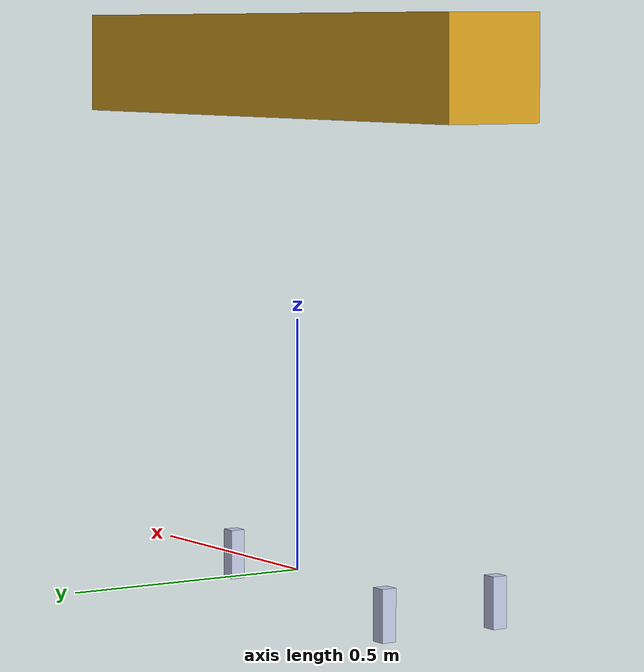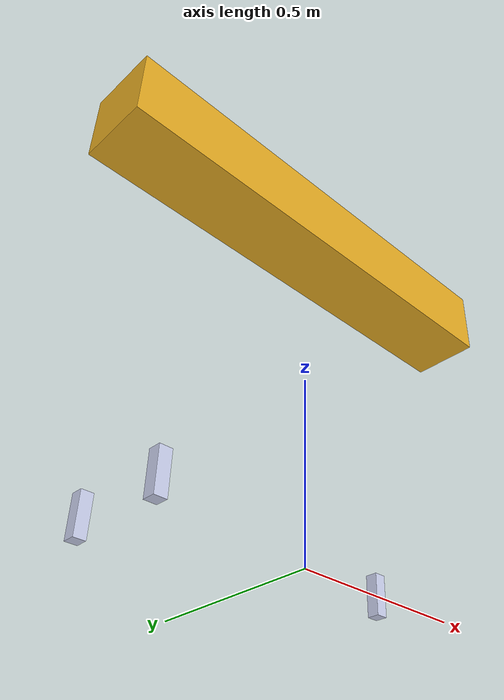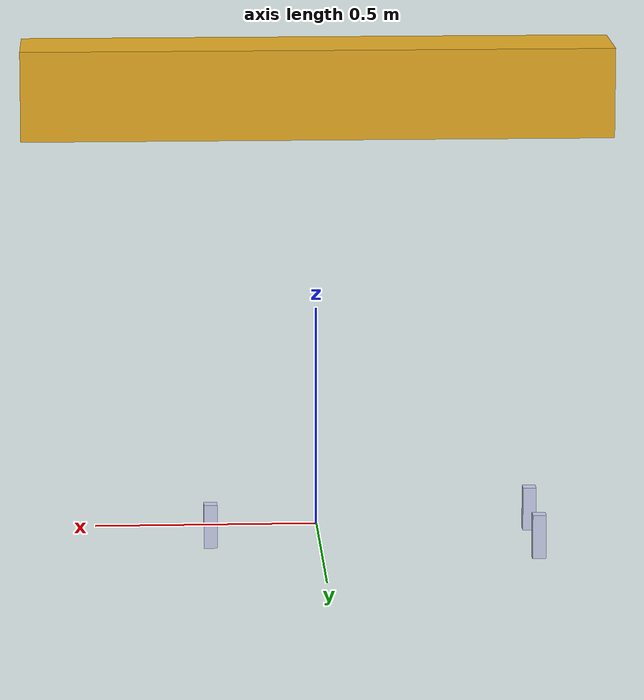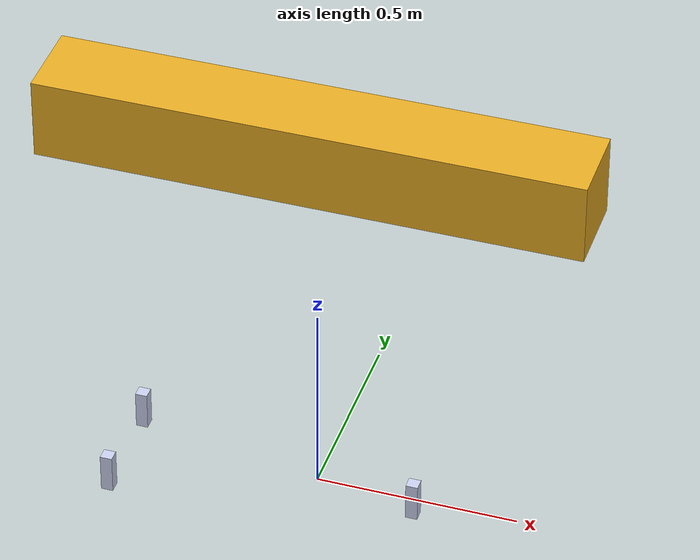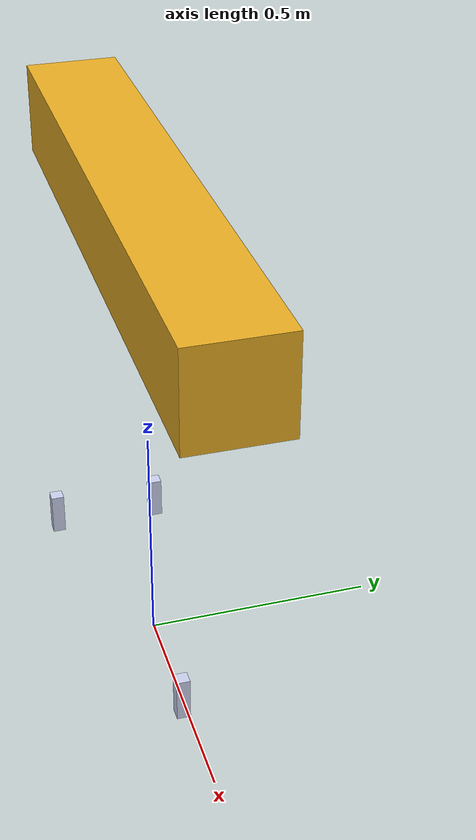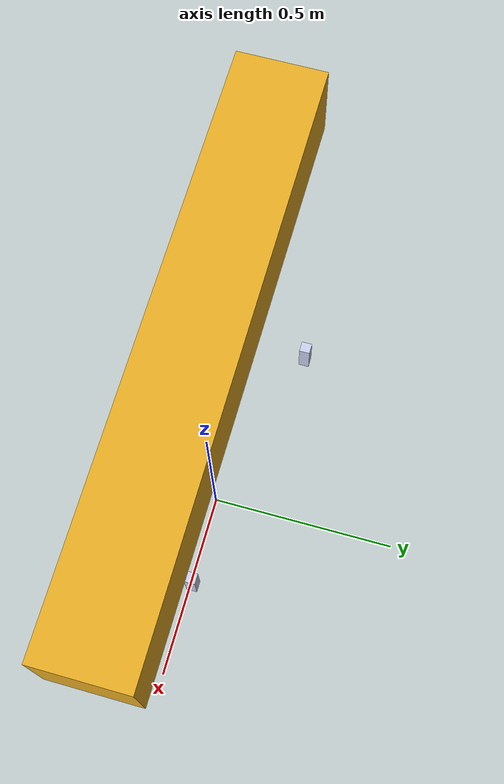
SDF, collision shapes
<?xml version="1.0"?>
<sdf version="1.9">
  <model name="aiapaec">
    <pose degrees="true">0 0 0 0 0 0</pose>

    <!-- base_link -->

    <link name="base_link">
      <inertial>
        <pose>0.0 0.0 0.0 0 0 0</pose>
        <mass>53.972</mass>
        <inertia>
          <ixx>1.1866349780349186</ixx>
          <ixy>0</ixy>
          <ixz>0</ixz>
          <iyy>8.449738344749418</iyy>
          <iyz>0</iyz>
          <izz>8.449738344749418</izz>
        </inertia>
      </inertial>
      <visual name="base_link_visual">
        <pose degrees="true">0 0 0 0 0 0</pose>
        <geometry>
          <mesh>
            <uri>model://aiapaec/meshes/base_link.stl</uri>
            <scale>1 1 1</scale>
          </mesh>
        </geometry>
        <material>
          <ambient>0.9098 0.67843 0.13725 1</ambient>
          <diffuse>0.9098 0.67843 0.13725 1</diffuse>
          <specular>0.1 0.1 0.1 1</specular>
          <emissive>0 0 0 0</emissive>
        </material>
      </visual>

      <collision name="base_link_collision">
        <pose>0.0 0.0 1 0 0 0</pose>
        <geometry>
          <box>
            <size>1.310 0.20 0.20</size>
          </box>
        </geometry>
      </collision>

      <sensor
            element_id="base_link" action="add"
            name="aiapaec_dvl"
            type="custom" gz:type="dvl">
          <!-- Account for DVL mounting position and base link rotation -->
          <pose degrees="true">0 0 0 0 0 0</pose>
          <always_on>1</always_on>
          <update_rate>30</update_rate>
          <topic>/aiapaec/gazebo/dvl</topic>
          <gz:dvl>
            <type>phased_array</type>
            <arrangement degrees="true">
              <beam id="1">
                <aperture>2.1</aperture>
                <rotation>45</rotation>
                <tilt>5</tilt>
              </beam>
              <beam>
                <aperture>2.1</aperture>
                <rotation>120</rotation>
                <tilt>5</tilt>
              </beam>
              <beam>
                <aperture>2.1</aperture>
                <rotation>-45</rotation>
                <tilt>5</tilt>
              </beam>
              <beam>
                <aperture>2.1</aperture>
                <rotation>-120</rotation>
                <tilt>5</tilt>
              </beam>
            </arrangement>
            <tracking>
              <bottom_mode>
                <when>best</when>
                <visualize>true</visualize>
              </bottom_mode>
            </tracking>
            <!-- Roughly 1 m resolution at a 100m -->
            <resolution>0.01</resolution>
            <!-- Approximate maximum range @ ~14.4v -->
            <maximum_range>100.</maximum_range>
            <minimum_range>0.1</minimum_range>
            <!-- ENU to SFM -->
            <reference_frame>0 0 0 0 0 0</reference_frame>
          </gz:dvl>
        </sensor>
        <!--
            See https://www.spartonnavex.com/product/ahrs-m2
        -->
        <sensor
            element_id="base_link"
            action="add"
            name="aiapaec_imu"
            type="imu">
        <!--IMU in a Sparton AHRS-M2 -->
          <always_on>1</always_on>
          <pose degrees="true">0 0 0 0 0 0</pose>
          <imu>
            <orientation_reference_frame>base_link</orientation_reference_frame>
            <enable_orientation>1</enable_orientation>
          </imu>
          <update_rate>30</update_rate>
          <topic>/aiapaec/gazebo/imu</topic>
        </sensor>

    </link>

    <plugin
        filename="gz-sim-odometry-publisher-system"
        name="gz::sim::systems::OdometryPublisher">
        <odom_frame>base_link</odom_frame>
        <odom_publish_frequency>400</odom_publish_frequency>
        <dimensions>3</dimensions>
        <rpy_offset>0 0 0</rpy_offset>
    </plugin>

    <plugin
      filename="gz-sim-buoyancy-engine-system"
      name="gz::sim::systems::BuoyancyEngine">
      <link_name>base_link</link_name>
      <namespace>aiapaec</namespace>
      <min_volume>0.04000</min_volume>
      <neutral_volume>0.05267</neutral_volume>
      <default_volume>0.05267</default_volume>
      <max_volume>0.0600</max_volume>
      <max_inflation_rate>0.00001</max_inflation_rate>
      <fluid_density>1030</fluid_density>
      <surface>0</surface>
    </plugin>

<!-- Hydrodynamics plugin -->
    <plugin
      filename="gz-sim-hydrodynamics-system"
      name="gz::sim::systems::Hydrodynamics">
      <link_name>base_link</link_name>
      <water_density>1030.0</water_density>
      <!-- Added mass: -->
        <xDotU>7.830329E-01</xDotU>  <!-- -7.830329E-01 (Referencial calculus) -->
        <yDotV>-5.062522E+01</yDotV>
        <zDotW>-5.062522E+01</zDotW>
        <kDotP>-3.913712E-01</kDotP>
        <mDotQ>-6.885066E+00</mDotQ>
        <nDotR>-6.885066E+00</nDotR>
        <!-- First order stability derivative: -->
        <xU>0.0</xU>
        <yV>0.0</yV>
        <zW>0.0</zW>
        <kP>0.0</kP>
        <mQ>0.0</mQ>
        <nR>0.0</nR>
        <!-- Second order stability derivative: -->
        <xUabsU>-1.479637E+00</xUabsU>
        <yVabsV>-1.258586E+02</yVabsV>
        <zWabsW>-1.258586E+02</zWabsW>
        <kPabsP>0.000000E+00</kPabsP>
        <mQabsQ>-6.347858E+00</mQabsQ>
        <nRabsR>-6.347858E+00</nRabsR>
    </plugin>

<!-- Motor_derecho (Thruster 1)-->

    <link name="thruster1">
      <pose>-0.49387 -0.12499 0.00010437 -1.5708 0 0</pose> <!---0.49387 -0.12499 0.00010437 -1.5708 0 0 Pose to inertias-->
      <visual name="thruster1_visual">
        <pose>0 0 0 0 0 0</pose> <!--Pose to meshes-->
        <geometry>
          <mesh>
            <uri>model://aiapaec/meshes/thruster1.stl</uri>
            <scale>1 1 1</scale>
          </mesh>
        </geometry>
        <material>
          <ambient>0.79216 0.81961 0.93333 1</ambient>
          <diffuse>0.79216 0.81961 0.93333 1</diffuse>
          <specular>0.1 0.1 0.1 1</specular>
          <emissive>0 0 0 0</emissive>
        </material>
      </visual>
       <inertial>
        <mass>0.0927</mass>
        <inertia>
          <ixx>0.0001</ixx>
          <ixy>0</ixy>
          <ixz>0</ixz>
          <iyy>0.0001</iyy>
          <iyz>0</iyz>
          <izz>0.0001</izz>
        </inertia>
      </inertial>
      <collision name="thruster1_collision">
        <geometry>
          <box>
            <size>0.03 0.1 0.03</size>
          </box>
        </geometry>
      </collision>
    </link>

<!-- Motor_izquierda (Thruster 2)-->

    <link name="thruster2">
      <pose>-0.49387 0.12499 -0.00010437 1.5708 0 0</pose>
      <visual name="thruster2_visual">
        <pose>0 0 0 0 0 0</pose>
        <geometry>
          <mesh>
            <uri>model://aiapaec/meshes/thruster2.stl</uri>
            <scale>1 1 1</scale>
          </mesh>
        </geometry>
        <material>
          <ambient>0.79216 0.81961 0.93333 1</ambient>
          <diffuse>0.79216 0.81961 0.93333 1</diffuse>
          <specular>0.1 0.1 0.1 1</specular>
          <emissive>0 0 0 0</emissive>
        </material>
      </visual>
      <inertial>
        <mass>0.0927</mass>
        <inertia>
          <ixx>0.0001</ixx>
          <ixy>0</ixy>
          <ixz>0</ixz>
          <iyy>0.0001</iyy>
          <iyz>0</iyz>
          <izz>0.0001</izz>
        </inertia>
      </inertial>
      <collision name="thruster2_collision">
        <geometry>
          <box>
            <size>0.03 0.1 0.03</size>
          </box>
        </geometry>
      </collision>
    </link>

<!-- Motor_medio_link (Thruster 3)-->

    <link name="thruster3">
      <pose>0.24 0.001871 0 1.5708 0 1.5708</pose>
      <visual name="thruster3_visual">
        <pose>0.0085526 4.0292E-08 -1.9993E-08 0 0 0</pose>
        <geometry>
          <mesh>
            <uri>model://aiapaec/meshes/thruster3.stl</uri>
            <scale>1 1 1</scale>
          </mesh>
        </geometry>
        <material>
          <ambient>0.79216 0.81961 0.93333 1</ambient>
          <diffuse>0.79216 0.81961 0.93333 1</diffuse>
          <specular>0.1 0.1 0.1 1</specular>
          <emissive>0 0 0 0</emissive>
        </material>
      </visual>
       <inertial>
        <mass>0.0927</mass>
        <inertia>
          <ixx>0.0001</ixx>
          <ixy>0</ixy>
          <ixz>0</ixz>
          <iyy>0.0001</iyy>
          <iyz>0</iyz>
          <izz>0.0001</izz>
        </inertia>
      </inertial>
      <collision name="thruster3_collision">
        <geometry>
          <box>
            <size>0.03 0.1 0.03</size>
          </box>
        </geometry>
      </collision>
    </link>

<!-- Joint base_link/thruster1-->

    <joint name="thruster1_joint" type="revolute">
      <pose>0 0 0 0 0 0</pose>
      <parent>base_link</parent>
      <child>thruster1</child>
      <axis>
        <xyz>1 0 0</xyz>
      </axis>
    </joint>

<!-- Joint base_link/thruster2-->

    <joint name="thruster2_joint" type="revolute">
      <pose>0 0 0 0 0 0</pose>
      <parent>base_link</parent>
      <child>thruster2</child>
      <axis>
        <xyz>1 0 0</xyz>
      </axis>
    </joint>

<!-- Joint base_link/thruster3-->

    <joint name="thruster3_joint" type="revolute">
      <pose>0 0 0 0 0 0</pose>
      <parent>base_link</parent>
      <child>thruster3</child>
      <axis>
        <xyz>1 0 0</xyz>
      </axis>
    </joint>

<!-- Plugin thruster-->

<!-- thruster 1-->

    <plugin
        filename="gz-sim-thruster-system"
        name="gz::sim::systems::Thruster">
      <namespace>aiapaec</namespace>
      <joint_name>thruster1_joint</joint_name>
      <thrust_coefficient>0.02</thrust_coefficient>
      <fluid_density>1030.0</fluid_density>
      <propeller_diameter>0.1</propeller_diameter>
      <velocity_control>true</velocity_control>
      <use_angvel_cmd>false</use_angvel_cmd>
    </plugin>

<!-- thruster 2-->

    <plugin
        filename="gz-sim-thruster-system"
        name="gz::sim::systems::Thruster">
      <namespace>aiapaec</namespace>
      <joint_name>thruster2_joint</joint_name>
      <thrust_coefficient>0.02</thrust_coefficient>
      <fluid_density>1030.0</fluid_density>
      <propeller_diameter>0.1</propeller_diameter>
      <velocity_control>true</velocity_control>
      <use_angvel_cmd>false</use_angvel_cmd>
    </plugin>

<!-- thruster 3-->

    <plugin
        filename="gz-sim-thruster-system"
        name="gz::sim::systems::Thruster">
      <namespace>aiapaec</namespace>
      <joint_name>thruster3_joint</joint_name>
      <thrust_coefficient>0.02</thrust_coefficient>
      <fluid_density>1030.0</fluid_density>
      <propeller_diameter>0.1</propeller_diameter>
      <velocity_control>true</velocity_control>
      <use_angvel_cmd>false</use_angvel_cmd>
    </plugin>

  </model>
</sdf>
